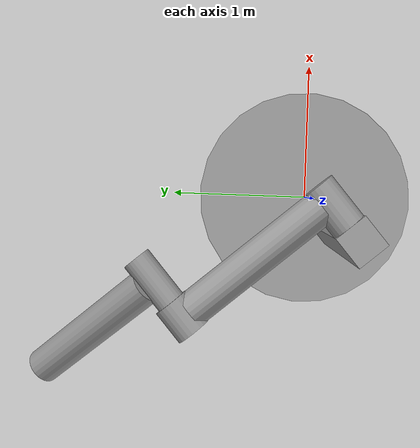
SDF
<?xml version="1.0" ?>
<sdf version="1.3">
  <world name="default">
    <!-- A ground plane -->
    <include>
      <uri>model://ground_plane</uri>
    </include>
    <gui>
      <camera name="user_camera">
        <pose>-25 -15 12.053900 0.000000 0.2 0.352194</pose>
      </camera>
    </gui>
    <scene>
      <ambient>0.5 0.5 0.5 1</ambient>
      <background>0.5 0.5 0.5 1</background>
      <shadows>false</shadows>
    </scene>
    <include><uri>model://sun</uri></include>
    <physics type="ode">
      <gravity>0.0 0.0 -9.81</gravity>
      <ode>
        <solver>
          <type>quick</type>
          <dt>0.001</dt>
          <iters>50</iters>
          <sor>1.4</sor>
        </solver>
        <constraints>
          <cfm>0</cfm>
          <erp>1.0</erp>
          <contact_max_correcting_vel>0.0</contact_max_correcting_vel>
          <contact_surface_layer>0.0</contact_surface_layer>
        </constraints>
      </ode>
    </physics>
    <!-- A copy of double pendulum with base model with large
         and probably unrealistic inertia ratio across its
         lower_joint hinge constraint.
    -->
    <model name="double_pendulum_with_base">
      <pose>0 0 0 0 0 0.7071</pose>
      <link name="base">
        <inertial>
          <mass>100</mass>
          <inertia>
            <ixx>1.0</ixx> <ixy>0.0</ixy> <ixz>0.0</ixz>
            <iyy>2.0</iyy> <iyz>0.0</iyz>
            <izz>3.0</izz>
          </inertia>
        </inertial>
        <visual name="vis_plate_on_ground">
          <pose>0 0 0.01  0 0 0</pose>
          <geometry>
            <cylinder>
              <radius>0.8</radius>
              <length>0.02</length>
            </cylinder>
          </geometry>
          <material>
            <script>
              <uri>file://media/materials/scripts/gazebo.material</uri>
              <name>Gazebo/Grey</name>
            </script>
          </material>
        </visual>
        <visual name="vis_pole">
          <pose>-0.275 0 1.1  0 0 0</pose>
          <geometry>
            <box><size>0.2 0.2 2.2</size></box>
          </geometry>
          <material>
            <script>
              <uri>file://media/materials/scripts/gazebo.material</uri>
              <name>Gazebo/Grey</name>
            </script>
          </material>
        </visual>
        <collision name="col_plate_on_ground">
          <pose>0 0 0.01  0 0 0</pose>
          <geometry>
            <cylinder>
              <radius>0.8</radius>
              <length>0.02</length>
            </cylinder>
          </geometry>
        </collision>
        <collision name="col_pole">
          <pose>-0.275 0 1.1  0 0 0</pose>
          <geometry>
            <box><size>0.2 0.2 2.2</size></box>
          </geometry>
        </collision>
      </link>
      <!-- upper link, length 1, IC -90 degrees -->
      <link name="upper_link">
        <pose>0 0 2.1  -1.5708 0 0</pose>
        <self_collide>0</self_collide>
        <inertial>
          <pose>0 0 0.5  0 0 0</pose>
          <mass>1.0</mass>
          <inertia>
            <ixx>0.01</ixx> <ixy>0.0</ixy> <ixz>0.0</ixz>
            <iyy>0.00002</iyy> <iyz>0.0</iyz>
            <izz>0.00003</izz>
          </inertia>
        </inertial>
        <visual name="vis_upper_joint">
          <pose>-0.05 0 0  0 1.5708 0</pose>
          <geometry>
            <cylinder>
              <radius>0.1</radius>
              <length>0.3</length>
            </cylinder>
          </geometry>
          <material>
            <script>
              <uri>file://media/materials/scripts/gazebo.material</uri>
              <name>Gazebo/Grey</name>
            </script>
          </material>
        </visual>
        <visual name="vis_lower_joint">
          <pose>0 0 1.0  0 1.5708 0</pose>
          <geometry>
            <cylinder>
              <radius>0.1</radius>
              <length>0.2</length>
            </cylinder>
          </geometry>
          <material>
            <script>
              <uri>file://media/materials/scripts/gazebo.material</uri>
              <name>Gazebo/Grey</name>
            </script>
          </material>
        </visual>
        <visual name="vis_cylinder">
          <pose>0 0 0.5  0 0 0</pose>
          <geometry>
            <cylinder>
              <radius>0.1</radius>
              <length>0.9</length>
            </cylinder>
          </geometry>
          <material>
            <script>
              <uri>file://media/materials/scripts/gazebo.material</uri>
              <name>Gazebo/Grey</name>
            </script>
          </material>
        </visual>
        <collision name="col_upper_joint">
          <pose>-0.05 0 0  0 1.5708 0</pose>
          <geometry>
            <cylinder>
              <radius>0.1</radius>
              <length>0.3</length>
            </cylinder>
          </geometry>
        </collision>
        <collision name="col_lower_joint">
          <pose>0 0 1.0  0 1.5708 0</pose>
          <geometry>
            <cylinder>
              <radius>0.1</radius>
              <length>0.2</length>
            </cylinder>
          </geometry>
        </collision>
        <collision name="col_cylinder">
          <pose>0 0 0.5  0 0 0</pose>
          <geometry>
            <cylinder>
              <radius>0.1</radius>
              <length>0.9</length>
            </cylinder>
          </geometry>
        </collision>
      </link>
      <!-- lower link, length 1, IC ~-120 degrees more -->
      <link name="lower_link">
        <pose>0.25 1.0 2.1  -2 0 0</pose>
        <self_collide>0</self_collide>
        <inertial>
          <pose>0 0 0.5  0 0 0</pose>
          <mass>0.01</mass>
          <inertia>
            <ixx>0.0001</ixx> <ixy>0.0</ixy> <ixz>0.0</ixz>
            <iyy>0.000000002</iyy> <iyz>0.0</iyz>
            <izz>0.000000003</izz>
          </inertia>
        </inertial>
        <visual name="vis_lower_joint">
          <pose>0 0 0  0 1.5708 0</pose>
          <geometry>
            <cylinder>
              <radius>0.08</radius>
              <length>0.3</length>
            </cylinder>
          </geometry>
          <material>
            <script>
              <uri>file://media/materials/scripts/gazebo.material</uri>
              <name>Gazebo/Grey</name>
            </script>
          </material>
        </visual>
        <visual name="vis_cylinder">
          <pose>0 0 0.5  0 0 0</pose>
          <geometry>
            <cylinder>
              <radius>0.1</radius>
              <length>0.9</length>
            </cylinder>
          </geometry>
          <material>
            <script>
              <uri>file://media/materials/scripts/gazebo.material</uri>
              <name>Gazebo/Grey</name>
            </script>
          </material>
        </visual>
        <collision name="col_lower_joint">
          <pose>0 0 0  0 1.5708 0</pose>
          <geometry>
            <cylinder>
              <radius>0.08</radius>
              <length>0.3</length>
            </cylinder>
          </geometry>
        </collision>
        <collision name="col_cylinder">
          <pose>0 0 0.5  0 0 0</pose>
          <geometry>
            <cylinder>
              <radius>0.1</radius>
              <length>0.9</length>
            </cylinder>
          </geometry>
        </collision>
      </link>
      <!-- pin joint for upper link, at origin of upper link -->
      <joint name="upper_joint" type="revolute">
        <parent>base</parent>
        <child>upper_link</child>
        <axis>
          <xyz>1.0 0 0</xyz>
        </axis>
      </joint>
      <!-- pin joint for lower link, at origin of child link -->
      <joint name="lower_joint" type="revolute">
        <parent>upper_link</parent>
        <child>lower_link</child>
        <axis>
          <xyz>1.0 0 0</xyz>
        </axis>
      </joint>

    </model>
  </world>
</sdf>
